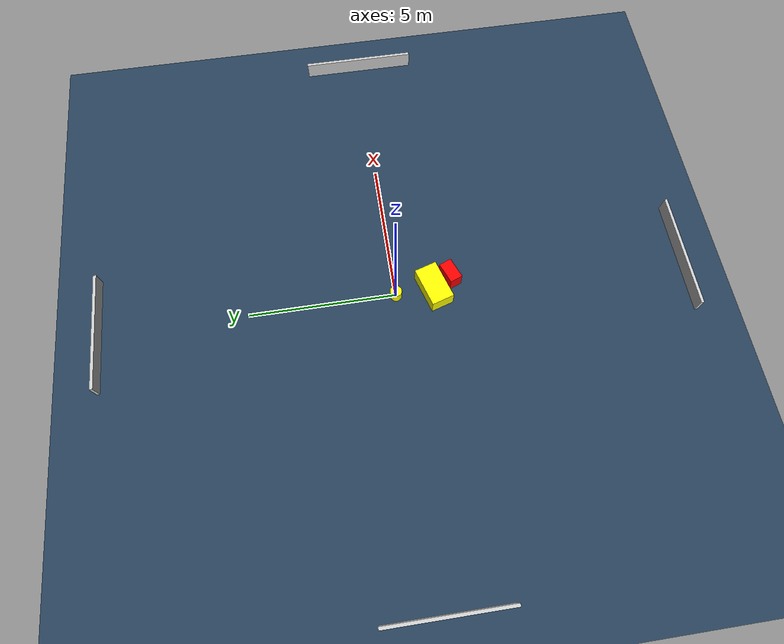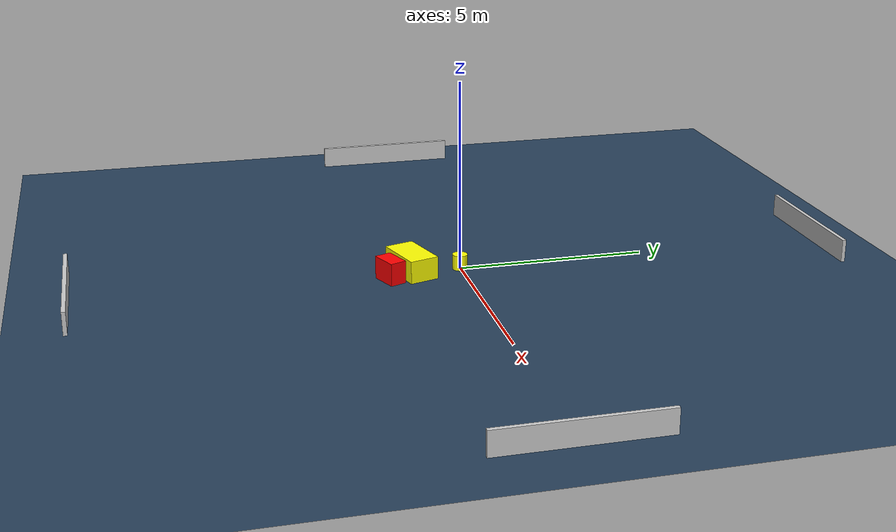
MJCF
<?xml version="1.0" ?>
<mujoco model="generated_environment">
  <option timestep="0.01" integrator="RK4" cone="elliptic"/>
  <default>
    <geom density="1"/>
  </default>
  <asset>
    <texture builtin="gradient" height="3072" name="skybox" rgb1="0.3 0.5 0.7" rgb2="0 0 0" type="skybox" width="512"/>
    <texture builtin="checker" height="300" name="groundplane" rgb1="0.2 0.3 0.4" rgb2="0.1 0.2 0.3" type="2d" width="300"/>
    <material name="groundplane" reflectance="0.2" texrepeat="5 5" texture="groundplane"/>
  </asset>
  <worldbody>
    <light dir="0 0 -1" directional="true" pos="0 0 1.5"/>
    <geom condim="3" friction="0.5 0.005 0.001" material="groundplane" name="floor" pos="0 0 0" size="0 0 0.05" type="plane"/>
    <body name="walls">
      <geom name="wall_1" condim="4" pos="-10.0 0.0 0.3" rgba="0.800000011920929 0.800000011920929 0.800000011920929 1.0" size="0.05 2.0 0.3" type="box"/>
      <geom name="wall_2" condim="4" pos="10.0 0.0 0.3" rgba="0.800000011920929 0.800000011920929 0.800000011920929 1.0" size="0.05 2.0 0.3" type="box"/>
      <geom name="wall_3" condim="4" pos="0.0 -10.0 0.3" rgba="0.800000011920929 0.800000011920929 0.800000011920929 1.0" size="2.0 0.05 0.3" type="box"/>
      <geom name="wall_4" condim="4" pos="0.0 10.0 0.3" rgba="0.800000011920929 0.800000011920929 0.800000011920929 1.0" size="2.0 0.05 0.3" type="box"/>
    </body>
    <body name="robot">
      <joint name="joint_x" type="slide" pos="0 0 0" axis="1 0 0"/>
      <joint name="joint_y" type="slide" pos="0 0 0" axis="0 1 0"/>
      <geom name="robot" type="cylinder" pos="0.0 0.0 0.2" size="0.2 0.2 0.0" mass="5.0" friction="1.0 0.005 0.0001" condim="4" rgba="1.0 1.0 0.0 1.0"/>
    </body>
    <body name="obstacle_1_movable">
      <geom name="obstacle_1_movable" condim="4" pos="0.021069258488053216 -1.3010686737308612 0.3" euler="0 0 287.0406740721631" friction="0.0 0.005 0.001" rgba="1.0 1.0 0.0 1.0" size="0.39311836164829045 0.6825058606364424 0.3" type="box" mass="0.1"/>
      <joint type="free"/>
    </body>
    <body name="obstacle_2_static">
      <geom name="obstacle_2_static" condim="4" pos="0.3951542619179008 -1.933936315054046 0.3" euler="0 0 111.79390751048328" friction="0.0 0.005 0.001" rgba="1.0 0.0 0.0 1.0" size="0.2211189653642897 0.37106165841952266 0.3" type="box"/>
    </body>
  </worldbody>
  <actuator>
    <motor name="actuator_x" joint="joint_x" gear="1" ctrlrange="-1 1"/>
    <motor name="actuator_y" joint="joint_y" gear="1" ctrlrange="-1 1"/>
  </actuator>
</mujoco>
